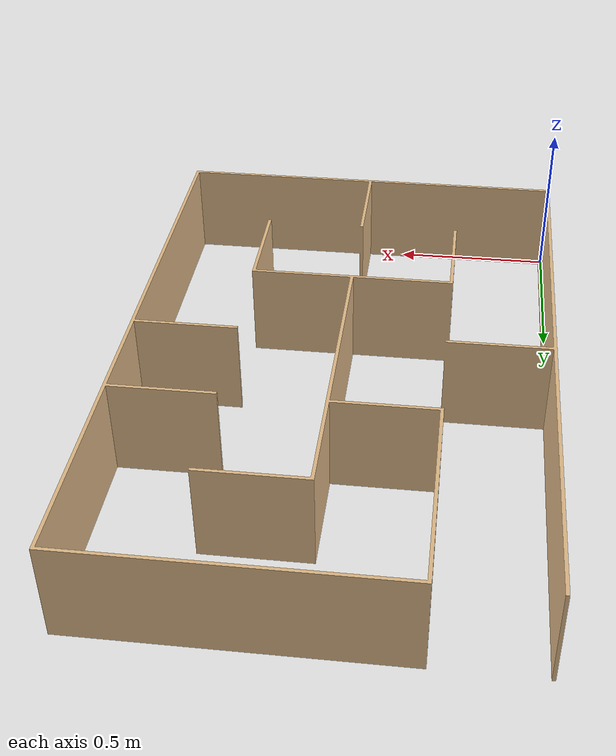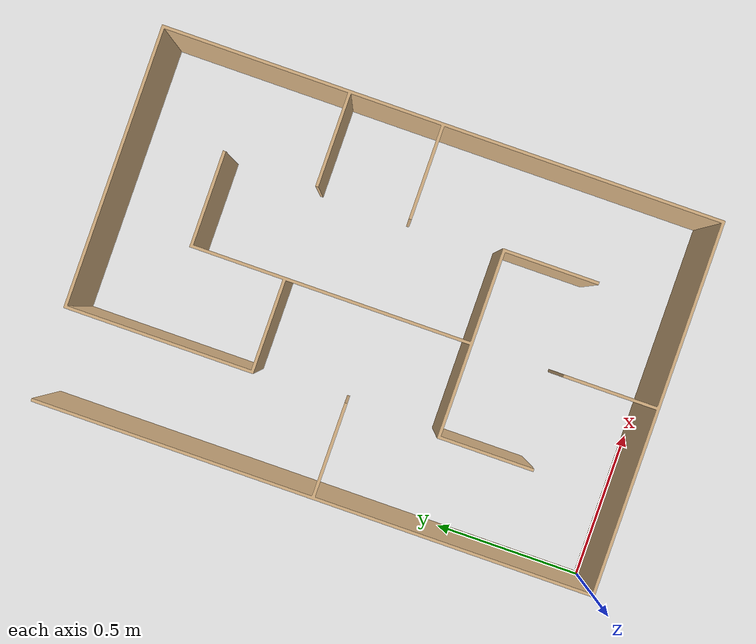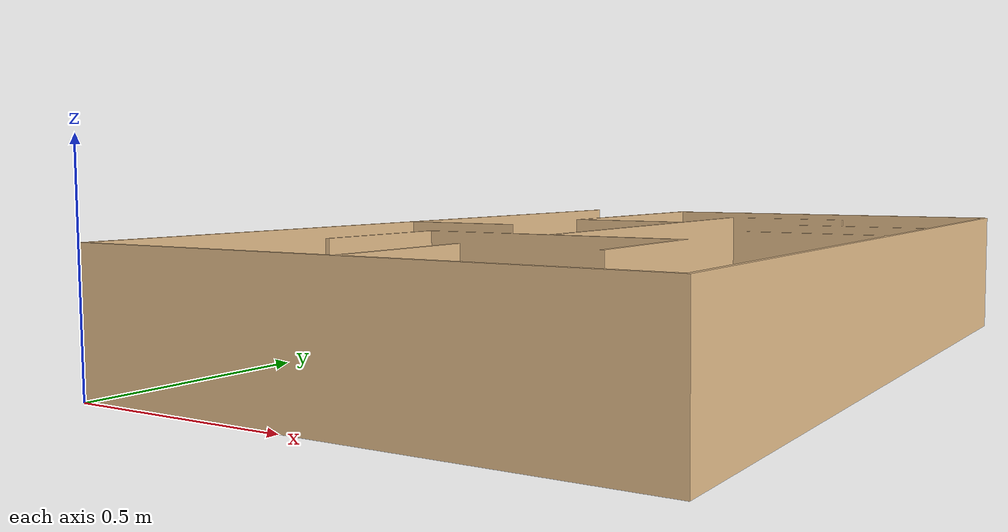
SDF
<?xml version="1.0"?>
<sdf version="1.6">
  <model name="labyrinth4">
      <static>true</static>
      <link name="body">
        <pose>0 0 0 0 0 0</pose>

        <inertial>
          <mass>5</mass>
          <pose>0.6025 0.935 0.15 0 0 0</pose>
          <inertia>
            <ixx>0.01</ixx>
            <iyy>0.01</iyy>
            <izz>0.01</izz>
          </inertia>
      	</inertial>

        <visual name="vis">
          <geometry>
            <mesh>
         	<uri>model://labyrinth4/M2_3.dae</uri>
          </mesh>
          </geometry>
        </visual>

        <collision name="col">
          <geometry>
            <mesh>
             <uri>model://labyrinth4/M2_3.dae</uri>
            </mesh>
          </geometry>
        </collision>
      </link>
  </model>
</sdf>
